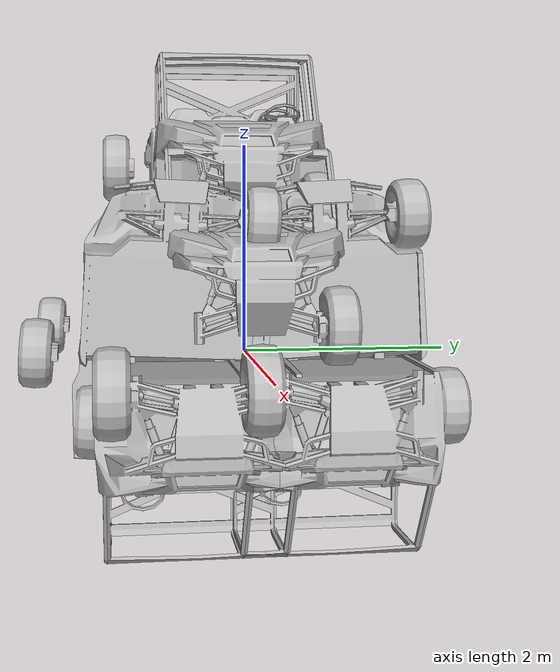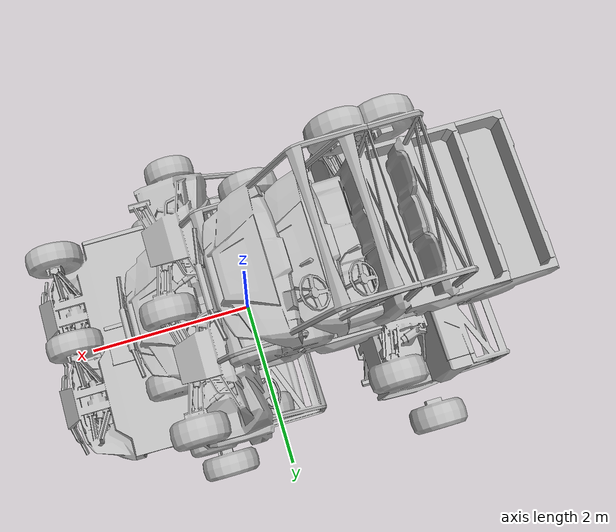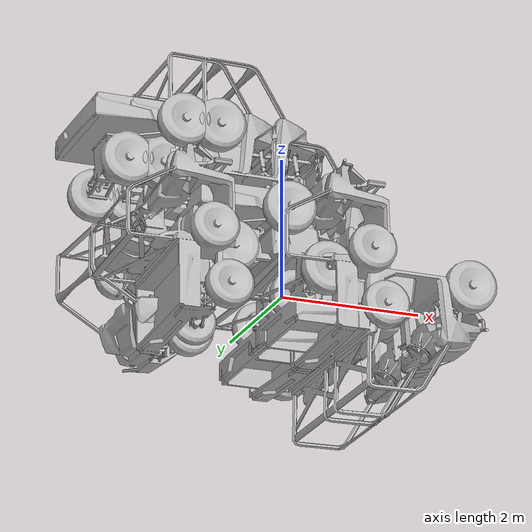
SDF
<?xml version="1.0" ?>
<sdf version='1.5'>
  <model name='rover_2Dlidar'>

    <include>
      <uri>model://rover</uri>
    </include>

    <include>
      <uri>model://2Dlidar</uri>
      <pose>0 0 1.30 0 0 -3.1415926</pose>
    </include>
    <joint name="2Dlidar_joint1" type="fixed">
      <child>2Dlidar::link</child>
      <parent>rover::base_link</parent>
      <axis>
        <xyz>0 0 1</xyz>
        <limit>
          <upper>0</upper>
          <lower>0</lower>
        </limit>
      </axis>
       <dynamics damping="50" friction="10"/>
    </joint>

  </model>
</sdf>
